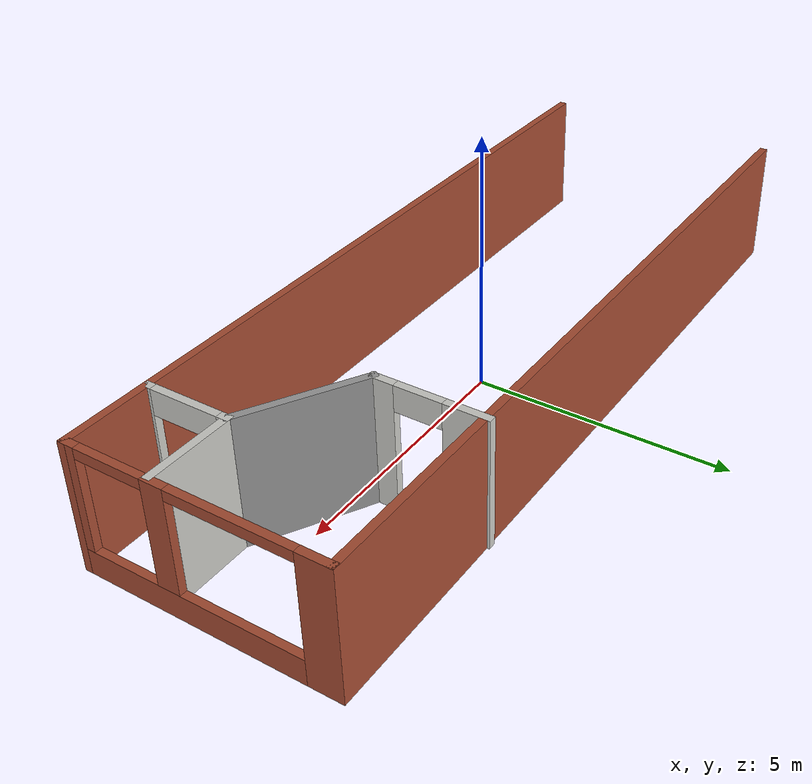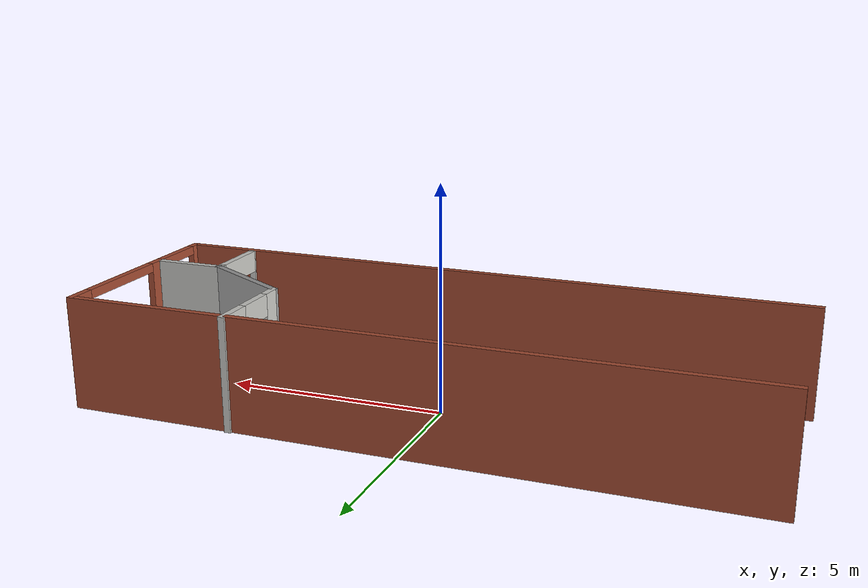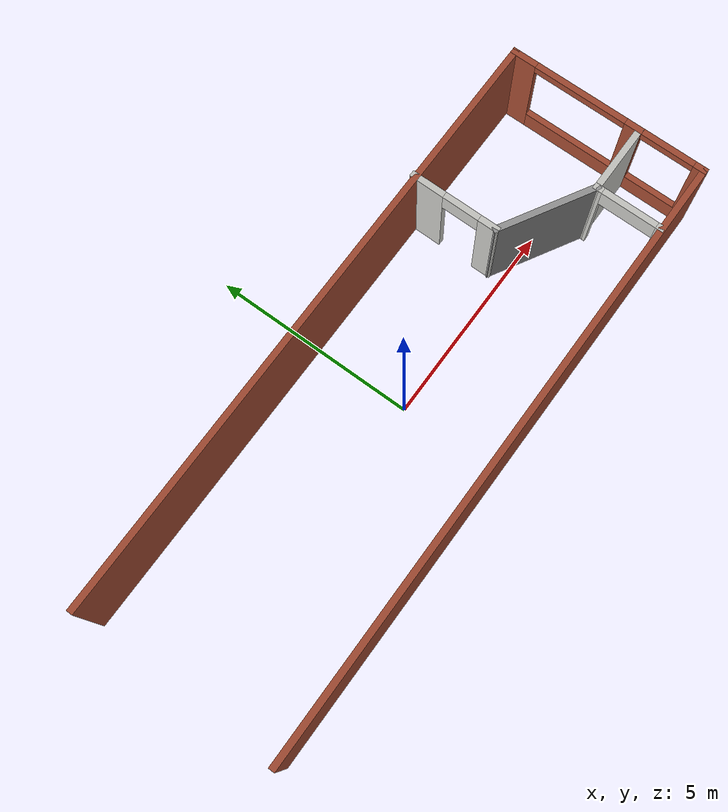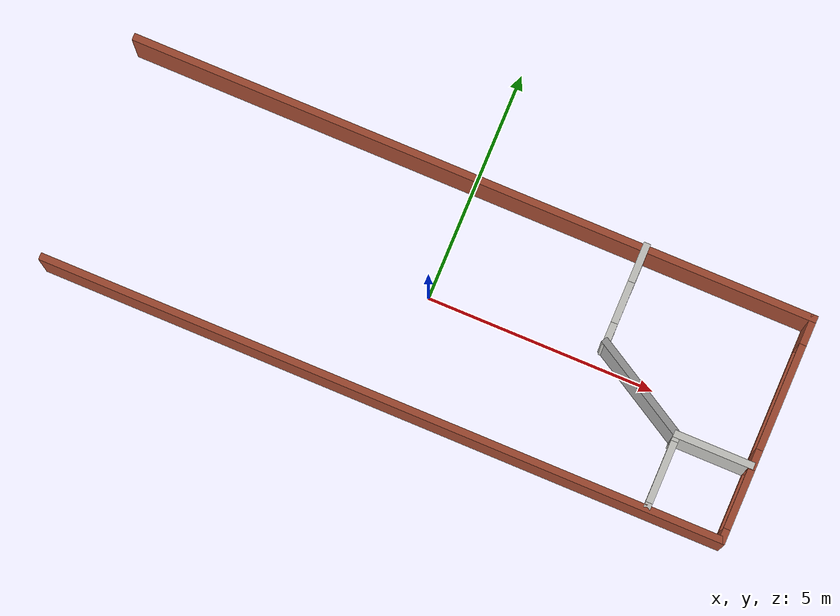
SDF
<sdf version="1.6">
 <model name="buildingMyHouse">
  <link name="Wall_33">
   <pose>0 -2.44789 0 0 -0 3.14159</pose>
   <visual name="Wall_33_Visual">
    <pose>0 0 1.25 0 -0 0</pose>
    <geometry><box><size>15 0.15 2.5</size></box></geometry>
    <material>
     <script><uri>file://media/materials/scripts/gazebo.material</uri><name>Gazebo/Bricks</name></script>
     <ambient>1 1 1 1</ambient>
     <shader type="pixel"/>
     <diffuse>1 1 1 1</diffuse>
     <specular>0.2 0.2 0.2 1</specular>
     <emissive>0 0 0 1</emissive>
    </material>
    <meta><layer>0</layer></meta>
   </visual>
   <collision name="Wall_33_Collision">
    <pose>0 0 1.25 0 -0 0</pose>
    <geometry><box><size>15 0.15 2.5</size></box></geometry>
    <surface>
     <friction>
      <ode><mu>1</mu><mu2>1</mu2><fdir1>0 0 0</fdir1><slip1>0</slip1><slip2>0</slip2></ode>
      <torsional>
       <coefficient>1</coefficient>
       <patch_radius>0</patch_radius>
       <surface_radius>0</surface_radius>
       <use_patch_radius>1</use_patch_radius>
       <ode><slip>0</slip></ode>
      </torsional>
     </friction>
     <bounce><restitution_coefficient>0</restitution_coefficient><threshold>1e+06</threshold></bounce>
     <contact>
      <collide_without_contact>0</collide_without_contact>
      <collide_without_contact_bitmask>1</collide_without_contact_bitmask>
      <collide_bitmask>1</collide_bitmask>
      <ode>
       <soft_cfm>0</soft_cfm>
       <soft_erp>0.2</soft_erp>
       <kp>1e+13</kp>
       <kd>1</kd>
       <max_vel>0.01</max_vel>
       <min_depth>0</min_depth>
      </ode>
      <bullet>
       <split_impulse>1</split_impulse>
       <split_impulse_penetration_threshold>-0.01</split_impulse_penetration_threshold>
       <soft_cfm>0</soft_cfm>
       <soft_erp>0.2</soft_erp>
       <kp>1e+13</kp>
       <kd>1</kd>
      </bullet>
     </contact>
    </surface>
   </collision>
  </link>
  <link name="Wall_35">
   <pose>0 2.40211 0 0 -0 0</pose>
   <visual name="Wall_35_Visual">
    <pose>0 0 1.25 0 -0 0</pose>
    <geometry><box><size>15 0.15 2.5</size></box></geometry>
    <material>
     <script><uri>file://media/materials/scripts/gazebo.material</uri><name>Gazebo/Bricks</name></script>
     <ambient>1 1 1 1</ambient>
     <shader type="pixel"/>
     <diffuse>1 1 1 1</diffuse>
     <specular>0.2 0.2 0.2 1</specular>
     <emissive>0 0 0 1</emissive>
    </material>
    <meta><layer>0</layer></meta>
   </visual>
   <collision name="Wall_35_Collision">
    <pose>0 0 1.25 0 -0 0</pose>
    <geometry><box><size>15 0.15 2.5</size></box></geometry>
    <surface>
     <friction>
      <ode><mu>1</mu><mu2>1</mu2><fdir1>0 0 0</fdir1><slip1>0</slip1><slip2>0</slip2></ode>
      <torsional>
       <coefficient>1</coefficient>
       <patch_radius>0</patch_radius>
       <surface_radius>0</surface_radius>
       <use_patch_radius>1</use_patch_radius>
       <ode><slip>0</slip></ode>
      </torsional>
     </friction>
     <bounce><restitution_coefficient>0</restitution_coefficient><threshold>1e+06</threshold></bounce>
     <contact>
      <collide_without_contact>0</collide_without_contact>
      <collide_without_contact_bitmask>1</collide_without_contact_bitmask>
      <collide_bitmask>1</collide_bitmask>
      <ode>
       <soft_cfm>0</soft_cfm>
       <soft_erp>0.2</soft_erp>
       <kp>1e+13</kp>
       <kd>1</kd>
       <max_vel>0.01</max_vel>
       <min_depth>0</min_depth>
      </ode>
      <bullet>
       <split_impulse>1</split_impulse>
       <split_impulse_penetration_threshold>-0.01</split_impulse_penetration_threshold>
       <soft_cfm>0</soft_cfm>
       <soft_erp>0.2</soft_erp>
       <kp>1e+13</kp>
       <kd>1</kd>
      </bullet>
     </contact>
    </surface>
   </collision>
  </link>
  <link name="Wall_43">
   <pose>4.7591 -0.239607 0 0 0 -0.523599</pose>
   <visual name="Wall_43_Visual">
    <pose>0 0 1.25 0 -0 0</pose>
    <geometry><box><size>2.5 0.15 2.5</size></box></geometry>
    <material>
     <script><uri>file://media/materials/scripts/gazebo.material</uri><name>Gazebo/Grey</name></script>
     <ambient>1 1 1 1</ambient>
     <shader type="pixel"/>
     <diffuse>0.7 0.7 0.7 1</diffuse>
     <specular>0.01 0.01 0.01 1</specular>
     <emissive>0 0 0 1</emissive>
    </material>
    <meta><layer>0</layer></meta>
   </visual>
   <collision name="Wall_43_Collision">
    <pose>0 0 1.25 0 -0 0</pose>
    <geometry><box><size>2.5 0.15 2.5</size></box></geometry>
    <surface>
     <friction>
      <ode><mu>1</mu><mu2>1</mu2><fdir1>0 0 0</fdir1><slip1>0</slip1><slip2>0</slip2></ode>
      <torsional>
       <coefficient>1</coefficient>
       <patch_radius>0</patch_radius>
       <surface_radius>0</surface_radius>
       <use_patch_radius>1</use_patch_radius>
       <ode><slip>0</slip></ode>
      </torsional>
     </friction>
     <bounce><restitution_coefficient>0</restitution_coefficient><threshold>1e+06</threshold></bounce>
     <contact>
      <collide_without_contact>0</collide_without_contact>
      <collide_without_contact_bitmask>1</collide_without_contact_bitmask>
      <collide_bitmask>1</collide_bitmask>
      <ode>
       <soft_cfm>0</soft_cfm>
       <soft_erp>0.2</soft_erp>
       <kp>1e+13</kp>
       <kd>1</kd>
       <max_vel>0.01</max_vel>
       <min_depth>0</min_depth>
      </ode>
      <bullet>
       <split_impulse>1</split_impulse>
       <split_impulse_penetration_threshold>-0.01</split_impulse_penetration_threshold>
       <soft_cfm>0</soft_cfm>
       <soft_erp>0.2</soft_erp>
       <kp>1e+13</kp>
       <kd>1</kd>
      </bullet>
     </contact>
    </surface>
   </collision>
  </link>
  <link name="Wall_51">
   <pose>7.425 -0.022893 0 0 0 -1.5708</pose>
   <visual name="Wall_51_Visual_0">
    <pose>-2.17411 0 1.25 0 -0 0</pose>
    <geometry><box><size>0.651775 0.15 2.5</size></box></geometry>
    <material>
     <script><uri>file://media/materials/scripts/gazebo.material</uri><name>Gazebo/Bricks</name></script>
     <ambient>1 1 1 1</ambient>
     <shader type="pixel"/>
     <diffuse>1 1 1 1</diffuse>
     <specular>0.2 0.2 0.2 1</specular>
     <emissive>0 0 0 1</emissive>
    </material>
    <meta><layer>0</layer></meta>
   </visual>
   <visual name="Wall_51_Visual_1">
    <pose>0.325888 0 0.25 0 -0 0</pose>
    <geometry><box><size>4.34823 0.15 0.5</size></box></geometry>
    <material>
     <script><uri>file://media/materials/scripts/gazebo.material</uri><name>Gazebo/Bricks</name></script>
     <ambient>1 1 1 1</ambient>
     <shader type="pixel"/>
     <diffuse>1 1 1 1</diffuse>
     <specular>0.2 0.2 0.2 1</specular>
     <emissive>0 0 0 1</emissive>
    </material>
    <meta><layer>0</layer></meta>
   </visual>
   <visual name="Wall_51_Visual_2">
    <pose>0.670077 0 1.5 0 -0 0</pose>
    <geometry><box><size>0.430604 0.15 2</size></box></geometry>
    <material>
     <script><uri>file://media/materials/scripts/gazebo.material</uri><name>Gazebo/Bricks</name></script>
     <ambient>1 1 1 1</ambient>
     <shader type="pixel"/>
     <diffuse>1 1 1 1</diffuse>
     <specular>0.2 0.2 0.2 1</specular>
     <emissive>0 0 0 1</emissive>
    </material>
    <meta><layer>0</layer></meta>
   </visual>
   <visual name="Wall_51_Visual_3">
    <pose>2.34269 0 1.5 0 -0 0</pose>
    <geometry><box><size>0.314621 0.15 2</size></box></geometry>
    <material>
     <script><uri>file://media/materials/scripts/gazebo.material</uri><name>Gazebo/Bricks</name></script>
     <ambient>1 1 1 1</ambient>
     <shader type="pixel"/>
     <diffuse>1 1 1 1</diffuse>
     <specular>0.2 0.2 0.2 1</specular>
     <emissive>0 0 0 1</emissive>
    </material>
    <meta><layer>0</layer></meta>
   </visual>
   <visual name="Wall_51_Visual_4">
    <pose>-0.696725 0 2.4 0 -0 0</pose>
    <geometry><box><size>2.303 0.15 0.2</size></box></geometry>
    <material>
     <script><uri>file://media/materials/scripts/gazebo.material</uri><name>Gazebo/Bricks</name></script>
     <ambient>1 1 1 1</ambient>
     <shader type="pixel"/>
     <diffuse>1 1 1 1</diffuse>
     <specular>0.2 0.2 0.2 1</specular>
     <emissive>0 0 0 1</emissive>
    </material>
    <meta><layer>0</layer></meta>
   </visual>
   <visual name="Wall_51_Visual_5">
    <pose>1.53538 0 2.4 0 -0 0</pose>
    <geometry><box><size>1.3 0.15 0.2</size></box></geometry>
    <material>
     <script><uri>file://media/materials/scripts/gazebo.material</uri><name>Gazebo/Bricks</name></script>
     <ambient>1 1 1 1</ambient>
     <shader type="pixel"/>
     <diffuse>1 1 1 1</diffuse>
     <specular>0.2 0.2 0.2 1</specular>
     <emissive>0 0 0 1</emissive>
    </material>
    <meta><layer>0</layer></meta>
   </visual>
   <collision name="Wall_51_Collision_0">
    <pose>-2.17411 0 1.25 0 -0 0</pose>
    <geometry><box><size>0.651775 0.15 2.5</size></box></geometry>
    <surface>
     <friction>
      <ode><mu>1</mu><mu2>1</mu2><fdir1>0 0 0</fdir1><slip1>0</slip1><slip2>0</slip2></ode>
      <torsional>
       <coefficient>1</coefficient>
       <patch_radius>0</patch_radius>
       <surface_radius>0</surface_radius>
       <use_patch_radius>1</use_patch_radius>
       <ode><slip>0</slip></ode>
      </torsional>
     </friction>
     <bounce><restitution_coefficient>0</restitution_coefficient><threshold>1e+06</threshold></bounce>
     <contact>
      <collide_without_contact>0</collide_without_contact>
      <collide_without_contact_bitmask>1</collide_without_contact_bitmask>
      <collide_bitmask>1</collide_bitmask>
      <ode>
       <soft_cfm>0</soft_cfm>
       <soft_erp>0.2</soft_erp>
       <kp>1e+13</kp>
       <kd>1</kd>
       <max_vel>0.01</max_vel>
       <min_depth>0</min_depth>
      </ode>
      <bullet>
       <split_impulse>1</split_impulse>
       <split_impulse_penetration_threshold>-0.01</split_impulse_penetration_threshold>
       <soft_cfm>0</soft_cfm>
       <soft_erp>0.2</soft_erp>
       <kp>1e+13</kp>
       <kd>1</kd>
      </bullet>
     </contact>
    </surface>
   </collision>
   <collision name="Wall_51_Collision_2">
    <pose>0.670077 0 1.5 0 -0 0</pose>
    <geometry><box><size>0.430604 0.15 2</size></box></geometry>
    <surface>
     <friction>
      <ode><mu>1</mu><mu2>1</mu2><fdir1>0 0 0</fdir1><slip1>0</slip1><slip2>0</slip2></ode>
      <torsional>
       <coefficient>1</coefficient>
       <patch_radius>0</patch_radius>
       <surface_radius>0</surface_radius>
       <use_patch_radius>1</use_patch_radius>
       <ode><slip>0</slip></ode>
      </torsional>
     </friction>
     <bounce><restitution_coefficient>0</restitution_coefficient><threshold>1e+06</threshold></bounce>
     <contact>
      <collide_without_contact>0</collide_without_contact>
      <collide_without_contact_bitmask>1</collide_without_contact_bitmask>
      <collide_bitmask>1</collide_bitmask>
      <ode>
       <soft_cfm>0</soft_cfm>
       <soft_erp>0.2</soft_erp>
       <kp>1e+13</kp>
       <kd>1</kd>
       <max_vel>0.01</max_vel>
       <min_depth>0</min_depth>
      </ode>
      <bullet>
       <split_impulse>1</split_impulse>
       <split_impulse_penetration_threshold>-0.01</split_impulse_penetration_threshold>
       <soft_cfm>0</soft_cfm>
       <soft_erp>0.2</soft_erp>
       <kp>1e+13</kp>
       <kd>1</kd>
      </bullet>
     </contact>
    </surface>
   </collision>
   <collision name="Wall_51_Collision_1">
    <pose>0.325888 0 0.25 0 -0 0</pose>
    <geometry><box><size>4.34823 0.15 0.5</size></box></geometry>
    <surface>
     <friction>
      <ode><mu>1</mu><mu2>1</mu2><fdir1>0 0 0</fdir1><slip1>0</slip1><slip2>0</slip2></ode>
      <torsional>
       <coefficient>1</coefficient>
       <patch_radius>0</patch_radius>
       <surface_radius>0</surface_radius>
       <use_patch_radius>1</use_patch_radius>
       <ode><slip>0</slip></ode>
      </torsional>
     </friction>
     <bounce><restitution_coefficient>0</restitution_coefficient><threshold>1e+06</threshold></bounce>
     <contact>
      <collide_without_contact>0</collide_without_contact>
      <collide_without_contact_bitmask>1</collide_without_contact_bitmask>
      <collide_bitmask>1</collide_bitmask>
      <ode>
       <soft_cfm>0</soft_cfm>
       <soft_erp>0.2</soft_erp>
       <kp>1e+13</kp>
       <kd>1</kd>
       <max_vel>0.01</max_vel>
       <min_depth>0</min_depth>
      </ode>
      <bullet>
       <split_impulse>1</split_impulse>
       <split_impulse_penetration_threshold>-0.01</split_impulse_penetration_threshold>
       <soft_cfm>0</soft_cfm>
       <soft_erp>0.2</soft_erp>
       <kp>1e+13</kp>
       <kd>1</kd>
      </bullet>
     </contact>
    </surface>
   </collision>
   <collision name="Wall_51_Collision_3">
    <pose>2.34269 0 1.5 0 -0 0</pose>
    <geometry><box><size>0.314621 0.15 2</size></box></geometry>
    <surface>
     <friction>
      <ode><mu>1</mu><mu2>1</mu2><fdir1>0 0 0</fdir1><slip1>0</slip1><slip2>0</slip2></ode>
      <torsional>
       <coefficient>1</coefficient>
       <patch_radius>0</patch_radius>
       <surface_radius>0</surface_radius>
       <use_patch_radius>1</use_patch_radius>
       <ode><slip>0</slip></ode>
      </torsional>
     </friction>
     <bounce><restitution_coefficient>0</restitution_coefficient><threshold>1e+06</threshold></bounce>
     <contact>
      <collide_without_contact>0</collide_without_contact>
      <collide_without_contact_bitmask>1</collide_without_contact_bitmask>
      <collide_bitmask>1</collide_bitmask>
      <ode>
       <soft_cfm>0</soft_cfm>
       <soft_erp>0.2</soft_erp>
       <kp>1e+13</kp>
       <kd>1</kd>
       <max_vel>0.01</max_vel>
       <min_depth>0</min_depth>
      </ode>
      <bullet>
       <split_impulse>1</split_impulse>
       <split_impulse_penetration_threshold>-0.01</split_impulse_penetration_threshold>
       <soft_cfm>0</soft_cfm>
       <soft_erp>0.2</soft_erp>
       <kp>1e+13</kp>
       <kd>1</kd>
      </bullet>
     </contact>
    </surface>
   </collision>
   <collision name="Wall_51_Collision_4">
    <pose>-0.696725 0 2.4 0 -0 0</pose>
    <geometry><box><size>2.303 0.15 0.2</size></box></geometry>
    <surface>
     <friction>
      <ode><mu>1</mu><mu2>1</mu2><fdir1>0 0 0</fdir1><slip1>0</slip1><slip2>0</slip2></ode>
      <torsional>
       <coefficient>1</coefficient>
       <patch_radius>0</patch_radius>
       <surface_radius>0</surface_radius>
       <use_patch_radius>1</use_patch_radius>
       <ode><slip>0</slip></ode>
      </torsional>
     </friction>
     <bounce><restitution_coefficient>0</restitution_coefficient><threshold>1e+06</threshold></bounce>
     <contact>
      <collide_without_contact>0</collide_without_contact>
      <collide_without_contact_bitmask>1</collide_without_contact_bitmask>
      <collide_bitmask>1</collide_bitmask>
      <ode>
       <soft_cfm>0</soft_cfm>
       <soft_erp>0.2</soft_erp>
       <kp>1e+13</kp>
       <kd>1</kd>
       <max_vel>0.01</max_vel>
       <min_depth>0</min_depth>
      </ode>
      <bullet>
       <split_impulse>1</split_impulse>
       <split_impulse_penetration_threshold>-0.01</split_impulse_penetration_threshold>
       <soft_cfm>0</soft_cfm>
       <soft_erp>0.2</soft_erp>
       <kp>1e+13</kp>
       <kd>1</kd>
      </bullet>
     </contact>
    </surface>
   </collision>
   <collision name="Wall_51_Collision_5">
    <pose>1.53538 0 2.4 0 -0 0</pose>
    <geometry><box><size>1.3 0.15 0.2</size></box></geometry>
    <surface>
     <friction>
      <ode><mu>1</mu><mu2>1</mu2><fdir1>0 0 0</fdir1><slip1>0</slip1><slip2>0</slip2></ode>
      <torsional>
       <coefficient>1</coefficient>
       <patch_radius>0</patch_radius>
       <surface_radius>0</surface_radius>
       <use_patch_radius>1</use_patch_radius>
       <ode><slip>0</slip></ode>
      </torsional>
     </friction>
     <bounce><restitution_coefficient>0</restitution_coefficient><threshold>1e+06</threshold></bounce>
     <contact>
      <collide_without_contact>0</collide_without_contact>
      <collide_without_contact_bitmask>1</collide_without_contact_bitmask>
      <collide_bitmask>1</collide_bitmask>
      <ode>
       <soft_cfm>0</soft_cfm>
       <soft_erp>0.2</soft_erp>
       <kp>1e+13</kp>
       <kd>1</kd>
       <max_vel>0.01</max_vel>
       <min_depth>0</min_depth>
      </ode>
      <bullet>
       <split_impulse>1</split_impulse>
       <split_impulse_penetration_threshold>-0.01</split_impulse_penetration_threshold>
       <soft_cfm>0</soft_cfm>
       <soft_erp>0.2</soft_erp>
       <kp>1e+13</kp>
       <kd>1</kd>
      </bullet>
     </contact>
    </surface>
   </collision>
  </link>
  <link name="Wall_53">
   <pose>6.57668 -0.827107 0 0 -0 0</pose>
   <visual name="Wall_53_Visual">
    <pose>0 0 1.25 0 -0 0</pose>
    <geometry><box><size>1.75 0.15 2.5</size></box></geometry>
    <material>
     <script><uri>file://media/materials/scripts/gazebo.material</uri><name>Gazebo/CeilingTiled</name></script>
     <ambient>1 1 1 1</ambient>
     <shader type="pixel"/>
     <diffuse>1 1 1 1</diffuse>
     <specular>0 0 0 1</specular>
     <emissive>0 0 0 1</emissive>
    </material>
    <meta><layer>0</layer></meta>
   </visual>
   <collision name="Wall_53_Collision">
    <pose>0 0 1.25 0 -0 0</pose>
    <geometry><box><size>1.75 0.15 2.5</size></box></geometry>
    <surface>
     <friction>
      <ode><mu>1</mu><mu2>1</mu2><fdir1>0 0 0</fdir1><slip1>0</slip1><slip2>0</slip2></ode>
      <torsional>
       <coefficient>1</coefficient>
       <patch_radius>0</patch_radius>
       <surface_radius>0</surface_radius>
       <use_patch_radius>1</use_patch_radius>
       <ode><slip>0</slip></ode>
      </torsional>
     </friction>
     <bounce><restitution_coefficient>0</restitution_coefficient><threshold>1e+06</threshold></bounce>
     <contact>
      <collide_without_contact>0</collide_without_contact>
      <collide_without_contact_bitmask>1</collide_without_contact_bitmask>
      <collide_bitmask>1</collide_bitmask>
      <ode>
       <soft_cfm>0</soft_cfm>
       <soft_erp>0.2</soft_erp>
       <kp>1e+13</kp>
       <kd>1</kd>
       <max_vel>0.01</max_vel>
       <min_depth>0</min_depth>
      </ode>
      <bullet>
       <split_impulse>1</split_impulse>
       <split_impulse_penetration_threshold>-0.01</split_impulse_penetration_threshold>
       <soft_cfm>0</soft_cfm>
       <soft_erp>0.2</soft_erp>
       <kp>1e+13</kp>
       <kd>1</kd>
      </bullet>
     </contact>
    </surface>
   </collision>
  </link>
  <link name="Wall_56">
   <pose>5.77668 -1.62711 0 0 0 -1.5708</pose>
   <visual name="Wall_56_Visual_0">
    <pose>-0.760527 0 1.25 0 -0 0</pose>
    <geometry><box><size>0.228947 0.15 2.5</size></box></geometry>
    <material>
     <script><uri>file://media/materials/scripts/gazebo.material</uri><name>Gazebo/CeilingTiled</name></script>
     <ambient>1 1 1 1</ambient>
     <shader type="pixel"/>
     <diffuse>1 1 1 1</diffuse>
     <specular>0 0 0 1</specular>
     <emissive>0 0 0 1</emissive>
    </material>
    <meta><layer>0</layer></meta>
   </visual>
   <visual name="Wall_56_Visual_1">
    <pose>0.784214 0 1.25 0 -0 0</pose>
    <geometry><box><size>0.181572 0.15 2.5</size></box></geometry>
    <material>
     <script><uri>file://media/materials/scripts/gazebo.material</uri><name>Gazebo/CeilingTiled</name></script>
     <ambient>1 1 1 1</ambient>
     <shader type="pixel"/>
     <diffuse>1 1 1 1</diffuse>
     <specular>0 0 0 1</specular>
     <emissive>0 0 0 1</emissive>
    </material>
    <meta><layer>0</layer></meta>
   </visual>
   <visual name="Wall_56_Visual_2">
    <pose>0.023688 0 2.25 0 -0 0</pose>
    <geometry><box><size>1.33948 0.15 0.5</size></box></geometry>
    <material>
     <script><uri>file://media/materials/scripts/gazebo.material</uri><name>Gazebo/CeilingTiled</name></script>
     <ambient>1 1 1 1</ambient>
     <shader type="pixel"/>
     <diffuse>1 1 1 1</diffuse>
     <specular>0 0 0 1</specular>
     <emissive>0 0 0 1</emissive>
    </material>
    <meta><layer>0</layer></meta>
   </visual>
   <collision name="Wall_56_Collision_0">
    <pose>-0.760527 0 1.25 0 -0 0</pose>
    <geometry><box><size>0.228947 0.15 2.5</size></box></geometry>
    <surface>
     <friction>
      <ode><mu>1</mu><mu2>1</mu2><fdir1>0 0 0</fdir1><slip1>0</slip1><slip2>0</slip2></ode>
      <torsional>
       <coefficient>1</coefficient>
       <patch_radius>0</patch_radius>
       <surface_radius>0</surface_radius>
       <use_patch_radius>1</use_patch_radius>
       <ode><slip>0</slip></ode>
      </torsional>
     </friction>
     <bounce><restitution_coefficient>0</restitution_coefficient><threshold>1e+06</threshold></bounce>
     <contact>
      <collide_without_contact>0</collide_without_contact>
      <collide_without_contact_bitmask>1</collide_without_contact_bitmask>
      <collide_bitmask>1</collide_bitmask>
      <ode>
       <soft_cfm>0</soft_cfm>
       <soft_erp>0.2</soft_erp>
       <kp>1e+13</kp>
       <kd>1</kd>
       <max_vel>0.01</max_vel>
       <min_depth>0</min_depth>
      </ode>
      <bullet>
       <split_impulse>1</split_impulse>
       <split_impulse_penetration_threshold>-0.01</split_impulse_penetration_threshold>
       <soft_cfm>0</soft_cfm>
       <soft_erp>0.2</soft_erp>
       <kp>1e+13</kp>
       <kd>1</kd>
      </bullet>
     </contact>
    </surface>
   </collision>
   <collision name="Wall_56_Collision_1">
    <pose>0.784214 0 1.25 0 -0 0</pose>
    <geometry><box><size>0.181572 0.15 2.5</size></box></geometry>
    <surface>
     <friction>
      <ode><mu>1</mu><mu2>1</mu2><fdir1>0 0 0</fdir1><slip1>0</slip1><slip2>0</slip2></ode>
      <torsional>
       <coefficient>1</coefficient>
       <patch_radius>0</patch_radius>
       <surface_radius>0</surface_radius>
       <use_patch_radius>1</use_patch_radius>
       <ode><slip>0</slip></ode>
      </torsional>
     </friction>
     <bounce><restitution_coefficient>0</restitution_coefficient><threshold>1e+06</threshold></bounce>
     <contact>
      <collide_without_contact>0</collide_without_contact>
      <collide_without_contact_bitmask>1</collide_without_contact_bitmask>
      <collide_bitmask>1</collide_bitmask>
      <ode>
       <soft_cfm>0</soft_cfm>
       <soft_erp>0.2</soft_erp>
       <kp>1e+13</kp>
       <kd>1</kd>
       <max_vel>0.01</max_vel>
       <min_depth>0</min_depth>
      </ode>
      <bullet>
       <split_impulse>1</split_impulse>
       <split_impulse_penetration_threshold>-0.01</split_impulse_penetration_threshold>
       <soft_cfm>0</soft_cfm>
       <soft_erp>0.2</soft_erp>
       <kp>1e+13</kp>
       <kd>1</kd>
      </bullet>
     </contact>
    </surface>
   </collision>
   <collision name="Wall_56_Collision_2">
    <pose>0.023688 0 2.25 0 -0 0</pose>
    <geometry><box><size>1.33948 0.15 0.5</size></box></geometry>
    <surface>
     <friction>
      <ode><mu>1</mu><mu2>1</mu2><fdir1>0 0 0</fdir1><slip1>0</slip1><slip2>0</slip2></ode>
      <torsional>
       <coefficient>1</coefficient>
       <patch_radius>0</patch_radius>
       <surface_radius>0</surface_radius>
       <use_patch_radius>1</use_patch_radius>
       <ode><slip>0</slip></ode>
      </torsional>
     </friction>
     <bounce><restitution_coefficient>0</restitution_coefficient><threshold>1e+06</threshold></bounce>
     <contact>
      <collide_without_contact>0</collide_without_contact>
      <collide_without_contact_bitmask>1</collide_without_contact_bitmask>
      <collide_bitmask>1</collide_bitmask>
      <ode>
       <soft_cfm>0</soft_cfm>
       <soft_erp>0.2</soft_erp>
       <kp>1e+13</kp>
       <kd>1</kd>
       <max_vel>0.01</max_vel>
       <min_depth>0</min_depth>
      </ode>
      <bullet>
       <split_impulse>1</split_impulse>
       <split_impulse_penetration_threshold>-0.01</split_impulse_penetration_threshold>
       <soft_cfm>0</soft_cfm>
       <soft_erp>0.2</soft_erp>
       <kp>1e+13</kp>
       <kd>1</kd>
      </bullet>
     </contact>
    </surface>
   </collision>
  </link>
  <link name="Wall_59">
   <pose>3.74153 1.39789 0 0 -0 1.5708</pose>
   <visual name="Wall_59_Visual_0">
    <pose>-0.877746 0 1.25 0 -0 0</pose>
    <geometry><box><size>0.494508 0.15 2.5</size></box></geometry>
    <material>
     <script><uri>file://media/materials/scripts/gazebo.material</uri><name>Gazebo/CeilingTiled</name></script>
     <ambient>1 1 1 1</ambient>
     <shader type="pixel"/>
     <diffuse>1 1 1 1</diffuse>
     <specular>0 0 0 1</specular>
     <emissive>0 0 0 1</emissive>
    </material>
    <meta><layer>0</layer></meta>
   </visual>
   <visual name="Wall_59_Visual_1">
    <pose>0.697254 0 1.25 0 -0 0</pose>
    <geometry><box><size>0.855492 0.15 2.5</size></box></geometry>
    <material>
     <script><uri>file://media/materials/scripts/gazebo.material</uri><name>Gazebo/CeilingTiled</name></script>
     <ambient>1 1 1 1</ambient>
     <shader type="pixel"/>
     <diffuse>1 1 1 1</diffuse>
     <specular>0 0 0 1</specular>
     <emissive>0 0 0 1</emissive>
    </material>
    <meta><layer>0</layer></meta>
   </visual>
   <visual name="Wall_59_Visual_2">
    <pose>-0.180492 0 2.25 0 -0 0</pose>
    <geometry><box><size>0.9 0.15 0.5</size></box></geometry>
    <material>
     <script><uri>file://media/materials/scripts/gazebo.material</uri><name>Gazebo/CeilingTiled</name></script>
     <ambient>1 1 1 1</ambient>
     <shader type="pixel"/>
     <diffuse>1 1 1 1</diffuse>
     <specular>0 0 0 1</specular>
     <emissive>0 0 0 1</emissive>
    </material>
    <meta><layer>0</layer></meta>
   </visual>
   <collision name="Wall_59_Collision_0">
    <pose>-0.877746 0 1.25 0 -0 0</pose>
    <geometry><box><size>0.494508 0.15 2.5</size></box></geometry>
    <surface>
     <friction>
      <ode><mu>1</mu><mu2>1</mu2><fdir1>0 0 0</fdir1><slip1>0</slip1><slip2>0</slip2></ode>
      <torsional>
       <coefficient>1</coefficient>
       <patch_radius>0</patch_radius>
       <surface_radius>0</surface_radius>
       <use_patch_radius>1</use_patch_radius>
       <ode><slip>0</slip></ode>
      </torsional>
     </friction>
     <bounce><restitution_coefficient>0</restitution_coefficient><threshold>1e+06</threshold></bounce>
     <contact>
      <collide_without_contact>0</collide_without_contact>
      <collide_without_contact_bitmask>1</collide_without_contact_bitmask>
      <collide_bitmask>1</collide_bitmask>
      <ode>
       <soft_cfm>0</soft_cfm>
       <soft_erp>0.2</soft_erp>
       <kp>1e+13</kp>
       <kd>1</kd>
       <max_vel>0.01</max_vel>
       <min_depth>0</min_depth>
      </ode>
      <bullet>
       <split_impulse>1</split_impulse>
       <split_impulse_penetration_threshold>-0.01</split_impulse_penetration_threshold>
       <soft_cfm>0</soft_cfm>
       <soft_erp>0.2</soft_erp>
       <kp>1e+13</kp>
       <kd>1</kd>
      </bullet>
     </contact>
    </surface>
   </collision>
   <collision name="Wall_59_Collision_1">
    <pose>0.697254 0 1.25 0 -0 0</pose>
    <geometry><box><size>0.855492 0.15 2.5</size></box></geometry>
    <surface>
     <friction>
      <ode><mu>1</mu><mu2>1</mu2><fdir1>0 0 0</fdir1><slip1>0</slip1><slip2>0</slip2></ode>
      <torsional>
       <coefficient>1</coefficient>
       <patch_radius>0</patch_radius>
       <surface_radius>0</surface_radius>
       <use_patch_radius>1</use_patch_radius>
       <ode><slip>0</slip></ode>
      </torsional>
     </friction>
     <bounce><restitution_coefficient>0</restitution_coefficient><threshold>1e+06</threshold></bounce>
     <contact>
      <collide_without_contact>0</collide_without_contact>
      <collide_without_contact_bitmask>1</collide_without_contact_bitmask>
      <collide_bitmask>1</collide_bitmask>
      <ode>
       <soft_cfm>0</soft_cfm>
       <soft_erp>0.2</soft_erp>
       <kp>1e+13</kp>
       <kd>1</kd>
       <max_vel>0.01</max_vel>
       <min_depth>0</min_depth>
      </ode>
      <bullet>
       <split_impulse>1</split_impulse>
       <split_impulse_penetration_threshold>-0.01</split_impulse_penetration_threshold>
       <soft_cfm>0</soft_cfm>
       <soft_erp>0.2</soft_erp>
       <kp>1e+13</kp>
       <kd>1</kd>
      </bullet>
     </contact>
    </surface>
   </collision>
   <collision name="Wall_59_Collision_2">
    <pose>-0.180492 0 2.25 0 -0 0</pose>
    <geometry><box><size>0.9 0.15 0.5</size></box></geometry>
    <surface>
     <friction>
      <ode><mu>1</mu><mu2>1</mu2><fdir1>0 0 0</fdir1><slip1>0</slip1><slip2>0</slip2></ode>
      <torsional>
       <coefficient>1</coefficient>
       <patch_radius>0</patch_radius>
       <surface_radius>0</surface_radius>
       <use_patch_radius>1</use_patch_radius>
       <ode><slip>0</slip></ode>
      </torsional>
     </friction>
     <bounce><restitution_coefficient>0</restitution_coefficient><threshold>1e+06</threshold></bounce>
     <contact>
      <collide_without_contact>0</collide_without_contact>
      <collide_without_contact_bitmask>1</collide_without_contact_bitmask>
      <collide_bitmask>1</collide_bitmask>
      <ode>
       <soft_cfm>0</soft_cfm>
       <soft_erp>0.2</soft_erp>
       <kp>1e+13</kp>
       <kd>1</kd>
       <max_vel>0.01</max_vel>
       <min_depth>0</min_depth>
      </ode>
      <bullet>
       <split_impulse>1</split_impulse>
       <split_impulse_penetration_threshold>-0.01</split_impulse_penetration_threshold>
       <soft_cfm>0</soft_cfm>
       <soft_erp>0.2</soft_erp>
       <kp>1e+13</kp>
       <kd>1</kd>
      </bullet>
     </contact>
    </surface>
   </collision>
  </link>
  <static>1</static>
 </model>
</sdf>
